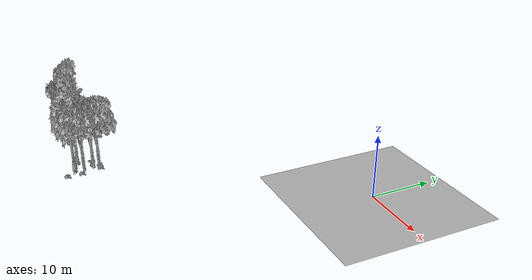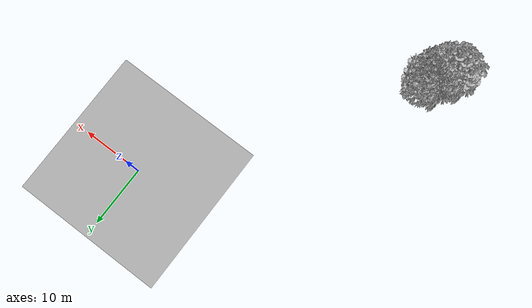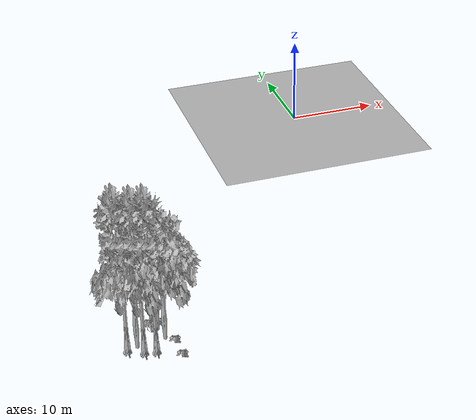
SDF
<sdf version="1.7">
 <world name="default">
  <model name="ground_plane">
   <static>1</static>
   <link name="link">
    <collision name="collision">
     <pose>-50 0 0 0 -0 0</pose>
     <geometry><plane><normal>0 0 1</normal><size>80 80</size></plane></geometry>
     <surface><contact><ode><min_depth>0.01</min_depth><max_vel>0</max_vel></ode></contact></surface>
    </collision>
    <visual name="grass">
     <cast_shadows>0</cast_shadows>
     <geometry>
      <mesh>
       <scale>0.46714285714285714 0.46714285714285714 0.1</scale>
       <uri>file://grass_plane/meshes/grass_plane.dae</uri>
      </mesh>
     </geometry>
    </visual>
   </link>
  </model>
  <model name="Tree 89">
   <static>1</static>
   <pose>-27.016304678904135 -34.4499625501313 0 1.57079 -0 0</pose>
   <link name="link">
    <collision name="collision">
     <geometry><mesh><scale>3.5 5 3.5</scale><uri>model://tree_2/meshes/tree_2.obj</uri></mesh></geometry>
    </collision>
    <visual name="visual">
     <geometry><mesh><scale>3.5 5 3.5</scale><uri>model://tree_2/meshes/tree_2.obj</uri></mesh></geometry>
    </visual>
   </link>
  </model>
  <model name="Tree 131">
   <static>1</static>
   <pose>-26.357109466526374 -37.007604837783944 0 1.57079 -0 0</pose>
   <link name="link">
    <collision name="collision">
     <geometry><mesh><scale>3.5 5 3.5</scale><uri>model://tree_2/meshes/tree_2.obj</uri></mesh></geometry>
    </collision>
    <visual name="visual">
     <geometry><mesh><scale>3.5 5 3.5</scale><uri>model://tree_2/meshes/tree_2.obj</uri></mesh></geometry>
    </visual>
   </link>
  </model>
  <model name="Tree 202">
   <static>1</static>
   <pose>-28.58868637829696 -38.132472623589734 0 1.57079 -0 0</pose>
   <link name="link">
    <collision name="collision">
     <geometry><mesh><scale>3.5 5 3.5</scale><uri>model://tree_9/meshes/tree_9.obj</uri></mesh></geometry>
    </collision>
    <visual name="visual">
     <geometry><mesh><scale>3.5 5 3.5</scale><uri>model://tree_9/meshes/tree_9.obj</uri></mesh></geometry>
    </visual>
   </link>
  </model>
  <model name="Tree 364">
   <static>1</static>
   <pose>-30.009355975497378 -37.37303151185383 0 1.57079 -0 0</pose>
   <link name="link">
    <collision name="collision">
     <geometry><mesh><scale>3.5 5 3.5</scale><uri>model://tree_9/meshes/tree_9.obj</uri></mesh></geometry>
    </collision>
    <visual name="visual">
     <geometry><mesh><scale>3.5 5 3.5</scale><uri>model://tree_9/meshes/tree_9.obj</uri></mesh></geometry>
    </visual>
   </link>
  </model>
  <model name="Tree 388">
   <static>1</static>
   <pose>-29.149564350343223 -37.46874451809995 0 1.57079 -0 0</pose>
   <link name="link">
    <collision name="collision">
     <geometry><mesh><scale>3.5 5 3.5</scale><uri>model://tree_2/meshes/tree_2.obj</uri></mesh></geometry>
    </collision>
    <visual name="visual">
     <geometry><mesh><scale>3.5 5 3.5</scale><uri>model://tree_2/meshes/tree_2.obj</uri></mesh></geometry>
    </visual>
   </link>
  </model>
  <model name="Tree 392">
   <static>1</static>
   <pose>-26.71141758552072 -35.45684949745976 0 1.57079 -0 0</pose>
   <link name="link">
    <collision name="collision">
     <geometry><mesh><scale>3.5 5 3.5</scale><uri>model://tree_2/meshes/tree_2.obj</uri></mesh></geometry>
    </collision>
    <visual name="visual">
     <geometry><mesh><scale>3.5 5 3.5</scale><uri>model://tree_2/meshes/tree_2.obj</uri></mesh></geometry>
    </visual>
   </link>
  </model>
  <model name="Tree 576">
   <static>1</static>
   <pose>-27.467423835291328 -38.3534968841829 0 1.57079 -0 0</pose>
   <link name="link">
    <collision name="collision">
     <geometry><mesh><scale>3.5 5 3.5</scale><uri>model://tree_9/meshes/tree_9.obj</uri></mesh></geometry>
    </collision>
    <visual name="visual">
     <geometry><mesh><scale>3.5 5 3.5</scale><uri>model://tree_9/meshes/tree_9.obj</uri></mesh></geometry>
    </visual>
   </link>
  </model>
  <model name="Bush 13">
   <static>1</static>
   <pose>-27.236590344037026 -34.36100380169257 0 1.57079 -0 0</pose>
   <link name="link">
    <collision name="collision">
     <geometry><mesh><scale>2 2 2</scale><uri>model://bush_2/meshes/bush_2.obj</uri></mesh></geometry>
     <surface><contact><collide_without_contact>false</collide_without_contact></contact></surface>
    </collision>
    <visual name="visual">
     <geometry><mesh><scale>2 2 2</scale><uri>model://bush_2/meshes/bush_2.obj</uri></mesh></geometry>
    </visual>
   </link>
  </model>
  <model name="Bush 167">
   <static>1</static>
   <pose>-26.18241430137775 -34.45062107444141 0 1.57079 -0 0</pose>
   <link name="link">
    <collision name="collision">
     <geometry><mesh><scale>2 2 2</scale><uri>model://bush_2/meshes/bush_2.obj</uri></mesh></geometry>
     <surface><contact><collide_without_contact>false</collide_without_contact></contact></surface>
    </collision>
    <visual name="visual">
     <geometry><mesh><scale>2 2 2</scale><uri>model://bush_2/meshes/bush_2.obj</uri></mesh></geometry>
    </visual>
   </link>
  </model>
  <model name="Bush 276">
   <static>1</static>
   <pose>-25.38572246603567 -39.83662736463249 0 1.57079 -0 0</pose>
   <link name="link">
    <collision name="collision">
     <geometry><mesh><scale>2 2 2</scale><uri>model://bush_2/meshes/bush_2.obj</uri></mesh></geometry>
     <surface><contact><collide_without_contact>false</collide_without_contact></contact></surface>
    </collision>
    <visual name="visual">
     <geometry><mesh><scale>2 2 2</scale><uri>model://bush_2/meshes/bush_2.obj</uri></mesh></geometry>
    </visual>
   </link>
  </model>
  <model name="Bush 287">
   <static>1</static>
   <pose>-27.164276135273838 -35.65144718730667 0 1.57079 -0 0</pose>
   <link name="link">
    <collision name="collision">
     <geometry><mesh><scale>2 2 2</scale><uri>model://bush_4/meshes/bush_4.obj</uri></mesh></geometry>
     <surface><contact><collide_without_contact>false</collide_without_contact></contact></surface>
    </collision>
    <visual name="visual">
     <geometry><mesh><scale>2 2 2</scale><uri>model://bush_4/meshes/bush_4.obj</uri></mesh></geometry>
    </visual>
   </link>
  </model>
  <model name="Bush 544">
   <static>1</static>
   <pose>-25.476548029810022 -37.55274818207476 0 1.57079 -0 0</pose>
   <link name="link">
    <collision name="collision">
     <geometry><mesh><scale>2 2 2</scale><uri>model://bush_2/meshes/bush_2.obj</uri></mesh></geometry>
     <surface><contact><collide_without_contact>false</collide_without_contact></contact></surface>
    </collision>
    <visual name="visual">
     <geometry><mesh><scale>2 2 2</scale><uri>model://bush_2/meshes/bush_2.obj</uri></mesh></geometry>
    </visual>
   </link>
  </model>
 </world>
</sdf>
